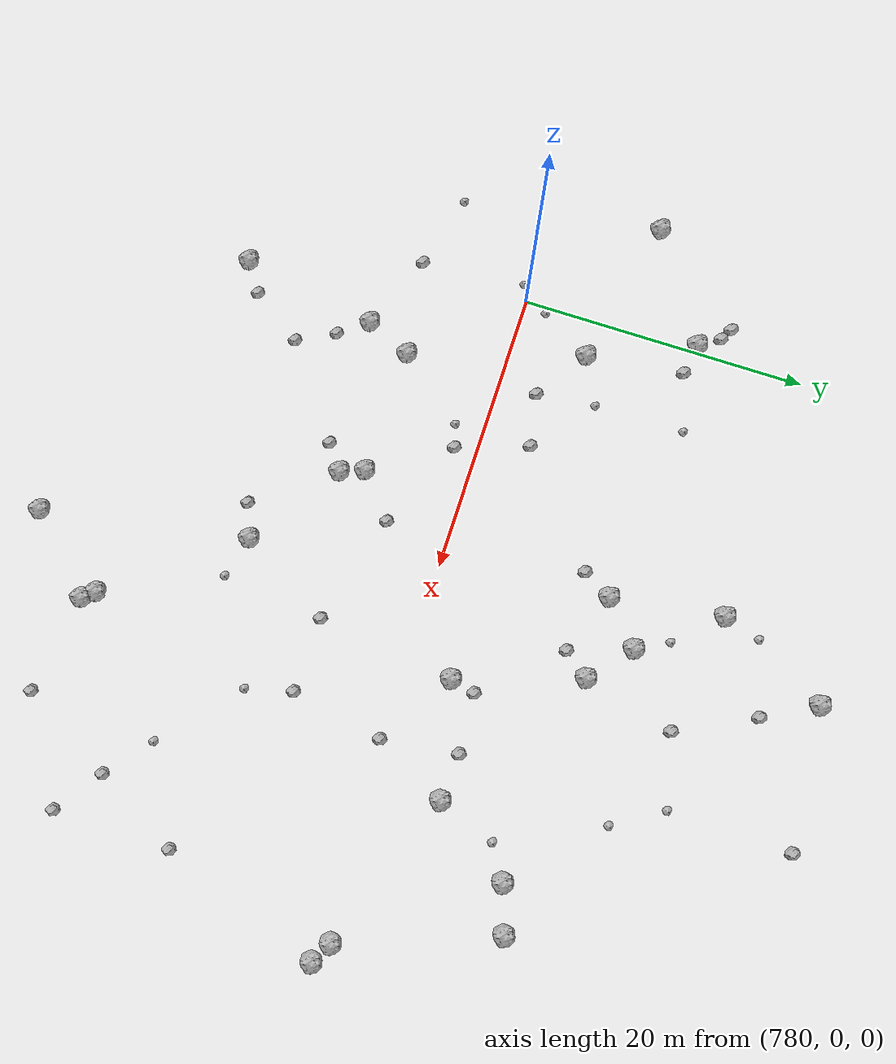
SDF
<sdf version="1.6">
 <world name="default">
  <include><uri>model://sun</uri></include>
  <model name="rock1_20_4">
   <include><uri>model://rock1</uri><pose>825.3592588389881 0.9672621202200844 0.5 0 0 0</pose></include>
  </model>
  <model name="rock1_20_5">
   <include><uri>model://rock1</uri><pose>785.0050238606208 -9.953411378915234 0.5 0 0 0</pose></include>
  </model>
  <model name="rock1_20_6">
   <include><uri>model://rock1</uri><pose>821.534507157535 11.297367824698469 0.5 0 0 0</pose></include>
  </model>
  <model name="rock1_20_7">
   <include><uri>model://rock1</uri><pose>772.097877349152 7.474294336725087 0.5 0 0 0</pose></include>
  </model>
  <model name="rock1_20_8">
   <include><uri>model://rock1</uri><pose>814.7419713646896 4.858169881633877 0.5 0 0 0</pose></include>
  </model>
  <model name="rock1_20_9">
   <include><uri>model://rock1</uri><pose>818.4485136226924 10.24425274266148 0.5 0 0 0</pose></include>
  </model>
  <model name="rock1_20_10">
   <include><uri>model://rock1</uri><pose>801.2439486358705 26.7312729274595 0.5 0 0 0</pose></include>
  </model>
  <model name="rock1_20_11">
   <include><uri>model://rock1</uri><pose>801.4006750462727 14.02866125816611 0.5 0 0 0</pose></include>
  </model>
  <model name="rock1_20_12">
   <include><uri>model://rock1</uri><pose>809.4098319877833 -22.133312072670613 0.5 0 0 0</pose></include>
  </model>
  <model name="rock1_20_13">
   <include><uri>model://rock1</uri><pose>795.8693818332043 -8.515391618845008 0.5 0 0 0</pose></include>
  </model>
  <model name="rock1_20_14">
   <include><uri>model://rock1</uri><pose>807.0251223081253 3.0945081644475536 0.5 0 0 0</pose></include>
  </model>
  <model name="rock1_20_15">
   <include><uri>model://rock1</uri><pose>798.5673734701005 11.493200466542177 0.5 0 0 0</pose></include>
  </model>
  <model name="rock1_20_16">
   <include><uri>model://rock1</uri><pose>795.248776846073 -6.878427141207538 0.5 0 0 0</pose></include>
  </model>
  <model name="rock1_20_17">
   <include><uri>model://rock1</uri><pose>826.8013955035033 0.18206373998130587 0.5 0 0 0</pose></include>
  </model>
  <model name="rock1_20_18">
   <include><uri>model://rock1</uri><pose>804.23955415716 11.560974345502665 0.5 0 0 0</pose></include>
  </model>
  <model name="rock1_20_19">
   <include><uri>model://rock1</uri><pose>782.7467269405063 5.13620076789794 0.5 0 0 0</pose></include>
  </model>
  <model name="rock1_20_20">
   <include><uri>model://rock1</uri><pose>804.6059945453374 -26.97549881197533 0.5 0 0 0</pose></include>
  </model>
  <model name="rock1_20_21">
   <include><uri>model://rock1</uri><pose>797.4622803584006 19.223632367899498 0.5 0 0 0</pose></include>
  </model>
  <model name="rock1_20_22">
   <include><uri>model://rock1</uri><pose>783.2698399651325 -19.534131606308637 0.5 0 0 0</pose></include>
  </model>
  <model name="rock1_20_23">
   <include><uri>model://rock1</uri><pose>802.1366664833956 -12.794614069411416 0.5 0 0 0</pose></include>
  </model>
  <model name="rock1_20_24">
   <include><uri>model://rock1</uri><pose>779.628403169256 12.295941882543957 0.5 0 0 0</pose></include>
  </model>
  <model name="rock1_20_25">
   <include><uri>model://rock1</uri><pose>786.4059283764144 -6.777792034832185 0.5 0 0 0</pose></include>
  </model>
  <model name="rock1_20_26">
   <include><uri>model://rock1</uri><pose>808.7492634715641 -21.33793416736172 0.5 0 0 0</pose></include>
  </model>
  <model name="rock2_20_0">
   <include><uri>model://rock2</uri><pose>790.0771430526489 3.396397648110039 0.3 0 0 0</pose></include>
  </model>
  <model name="rock2_20_1">
   <include><uri>model://rock2</uri><pose>779.5357290093685 -7.802710643620095 0.3 0 0 0</pose></include>
  </model>
  <model name="rock2_20_2">
   <include><uri>model://rock2</uri><pose>822.9941578335345 -18.868731922303386 0.3 0 0 0</pose></include>
  </model>
  <model name="rock2_20_3">
   <include><uri>model://rock2</uri><pose>807.4079249220198 4.850637867898492 0.3 0 0 0</pose></include>
  </model>
  <model name="rock2_20_4">
   <include><uri>model://rock2</uri><pose>819.8486255824912 -16.65106800986109 0.3 0 0 0</pose></include>
  </model>
  <model name="rock2_20_5">
   <include><uri>model://rock2</uri><pose>811.5011571368466 5.115032811818978 0.3 0 0 0</pose></include>
  </model>
  <model name="rock2_20_6">
   <include><uri>model://rock2</uri><pose>785.2791346178998 -18.147009638816826 0.3 0 0 0</pose></include>
  </model>
  <model name="rock2_20_7">
   <include><uri>model://rock2</uri><pose>805.7948589979326 -6.430200595629707 0.3 0 0 0</pose></include>
  </model>
  <model name="rock2_20_8">
   <include><uri>model://rock2</uri><pose>803.1830521469606 23.20493552928177 0.3 0 0 0</pose></include>
  </model>
  <model name="rock2_20_9">
   <include><uri>model://rock2</uri><pose>805.8386223739832 17.927896692101157 0.3 0 0 0</pose></include>
  </model>
  <model name="rock2_20_10">
   <include><uri>model://rock2</uri><pose>798.1230943359961 -4.326210545148751 0.3 0 0 0</pose></include>
  </model>
  <model name="rock2_20_11">
   <include><uri>model://rock2</uri><pose>786.4203255530306 -11.900395876769942 0.3 0 0 0</pose></include>
  </model>
  <model name="rock2_20_12">
   <include><uri>model://rock2</uri><pose>781.7888568951058 11.982194896903891 0.3 0 0 0</pose></include>
  </model>
  <model name="rock2_20_13">
   <include><uri>model://rock2</uri><pose>777.7242029722482 14.292251800508659 0.3 0 0 0</pose></include>
  </model>
  <model name="rock2_20_14">
   <include><uri>model://rock2</uri><pose>816.236156464749 -23.066570158725963 0.3 0 0 0</pose></include>
  </model>
  <model name="rock2_20_15">
   <include><uri>model://rock2</uri><pose>810.9604302120451 -6.5399358748118 0.3 0 0 0</pose></include>
  </model>
  <model name="rock2_20_16">
   <include><uri>model://rock2</uri><pose>802.8208429325744 9.84152929534337 0.3 0 0 0</pose></include>
  </model>
  <model name="rock2_20_17">
   <include><uri>model://rock2</uri><pose>810.9560208459279 27.512056962303774 0.3 0 0 0</pose></include>
  </model>
  <model name="rock2_20_18">
   <include><uri>model://rock2</uri><pose>778.5928395097973 13.79222715762642 0.3 0 0 0</pose></include>
  </model>
  <model name="rock2_20_19">
   <include><uri>model://rock2</uri><pose>791.762350229232 -1.5524568886762218 0.3 0 0 0</pose></include>
  </model>
  <model name="rock2_20_20">
   <include><uri>model://rock2</uri><pose>794.0835508680151 -9.80739743318999 0.3 0 0 0</pose></include>
  </model>
  <model name="rock2_20_21">
   <include><uri>model://rock2</uri><pose>787.792546121697 -14.504898327381557 0.3 0 0 0</pose></include>
  </model>
  <model name="rock2_20_22">
   <include><uri>model://rock2</uri><pose>797.3495602948665 9.502255746715697 0.3 0 0 0</pose></include>
  </model>
  <model name="rock2_20_23">
   <include><uri>model://rock2</uri><pose>812.1711474602637 -0.13111804565793506 0.3 0 0 0</pose></include>
  </model>
  <model name="rock2_20_24">
   <include><uri>model://rock2</uri><pose>786.3828478150958 2.68955338311293 0.3 0 0 0</pose></include>
  </model>
  <model name="rock2_20_25">
   <include><uri>model://rock2</uri><pose>823.0325008727864 -10.829077799685855 0.3 0 0 0</pose></include>
  </model>
  <model name="rock2_20_26">
   <include><uri>model://rock2</uri><pose>799.7944390218196 -13.735955201592244 0.3 0 0 0</pose></include>
  </model>
  <model name="rock3_20_0">
   <include><uri>model://rock3</uri><pose>811.7731950823359 -9.764377743055586 0.2 0 0 0</pose></include>
  </model>
  <model name="rock3_20_1">
   <include><uri>model://rock3</uri><pose>816.2035694188428 8.856483352542611 0.2 0 0 0</pose></include>
  </model>
  <model name="rock3_20_2">
   <include><uri>model://rock3</uri><pose>805.0272891679135 -13.569741655300518 0.2 0 0 0</pose></include>
  </model>
  <model name="rock3_20_3">
   <include><uri>model://rock3</uri><pose>800.1686789427066 16.26861979799515 0.2 0 0 0</pose></include>
  </model>
  <model name="rock3_20_4">
   <include><uri>model://rock3</uri><pose>798.1842833596597 21.84239025874126 0.2 0 0 0</pose></include>
  </model>
  <model name="rock3_20_5">
   <include><uri>model://rock3</uri><pose>779.590600729681 12.503684750284414 0.2 0 0 0</pose></include>
  </model>
  <model name="rock3_20_6">
   <include><uri>model://rock3</uri><pose>812.9048419633102 15.724606614134238 0.2 0 0 0</pose></include>
  </model>
  <model name="rock3_20_7">
   <include><uri>model://rock3</uri><pose>780.5155612505283 1.5433101338452744 0.2 0 0 0</pose></include>
  </model>
  <model name="rock3_20_8">
   <include><uri>model://rock3</uri><pose>785.8634709996217 13.090167956093687 0.2 0 0 0</pose></include>
  </model>
  <model name="rock3_20_9">
   <include><uri>model://rock3</uri><pose>785.9296063060314 6.780266935121155 0.2 0 0 0</pose></include>
  </model>
  <model name="rock3_20_10">
   <include><uri>model://rock3</uri><pose>790.1421569189655 -2.0384605092577175 0.2 0 0 0</pose></include>
  </model>
  <model name="rock3_20_11">
   <include><uri>model://rock3</uri><pose>778.8888338086533 -0.539303148241963 0.2 0 0 0</pose></include>
  </model>
  <model name="rock3_20_12">
   <include><uri>model://rock3</uri><pose>816.8576672859267 -14.251990864271562 0.2 0 0 0</pose></include>
  </model>
  <model name="rock3_20_13">
   <include><uri>model://rock3</uri><pose>774.1916205820177 -6.469975213063396 0.2 0 0 0</pose></include>
  </model>
  <model name="rock3_20_14">
   <include><uri>model://rock3</uri><pose>810.8137376435197 19.06760220740898 0.2 0 0 0</pose></include>
  </model>
 </world>
</sdf>
